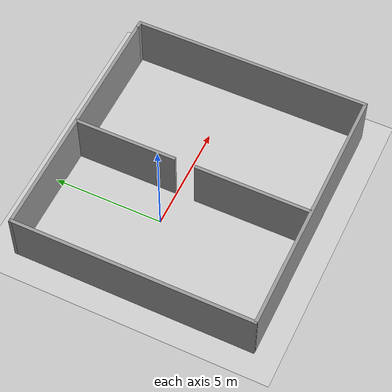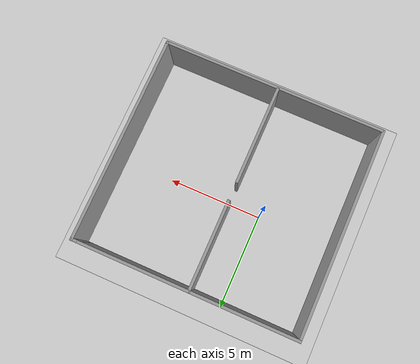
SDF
<sdf version="1.6">
 <world name="default">
  <light name="sun" type="directional">
   <pose>0 0 10 0 -0 0</pose>
   <diffuse>0.8 0.8 0.8 1</diffuse>
   <specular>0.1 0.1 0.1 1</specular>
   <attenuation>
    <range>1000</range>
    <constant>0.9</constant>
    <linear>0.01</linear>
    <quadratic>0.001</quadratic>
   </attenuation>
   <direction>-0.5 0.5 -1</direction>
  </light>
  <model name="ground_plane">
   <static>1</static>
   <link name="link">
    <collision name="collision">
     <geometry><plane><normal>0 0 1</normal><size>100 100</size></plane></geometry>
     <surface><friction><ode><mu>100</mu><mu2>50</mu2></ode></friction></surface>
    </collision>
    <visual name="visual">
     <cast_shadows>0</cast_shadows>
     <geometry><plane><normal>0 0 1</normal><size>100 100</size></plane></geometry>
     <material>
      <script><uri>file://media/materials/scripts/gazebo.material</uri><name>Gazebo/Grey</name></script>
     </material>
    </visual>
   </link>
  </model>
  <gravity>0 0 -9.8</gravity>
  <magnetic_field>6e-06 2.3e-05 -4.2e-05</magnetic_field>
  <atmosphere type="adiabatic"/>
  <physics name="default_physics" default="0" type="ode">
   <max_step_size>0.001</max_step_size>
   <real_time_factor>1</real_time_factor>
   <real_time_update_rate>1000</real_time_update_rate>
  </physics>
  <scene><ambient>0.4 0.4 0.4 1</ambient><background>0.7 0.7 0.7 1</background><shadows>1</shadows></scene>
  <spherical_coordinates>
   <surface_model>EARTH_WGS84</surface_model>
   <latitude_deg>0</latitude_deg>
   <longitude_deg>0</longitude_deg>
   <elevation>0</elevation>
   <heading_deg>0</heading_deg>
  </spherical_coordinates>
  <model name="map_a">
   <pose>1.91465 -0.667551 0 0 -0 0</pose>
   <link name="Wall_11">
    <collision name="Wall_11_Collision">
     <geometry><box><size>11.5 0.15 2.5</size></box></geometry>
     <pose>0 0 1.25 0 -0 0</pose>
    </collision>
    <visual name="Wall_11_Visual">
     <pose>0 0 1.25 0 -0 0</pose>
     <geometry><box><size>11.5 0.15 2.5</size></box></geometry>
     <material>
      <script><uri>file://media/materials/scripts/gazebo.material</uri><name>Gazebo/Grey</name></script>
      <ambient>1 1 1 1</ambient>
     </material>
    </visual>
    <pose>-0.175 5.43271 0 0 -0 0</pose>
   </link>
   <link name="Wall_12">
    <collision name="Wall_12_Collision">
     <geometry><box><size>0.5 0.15 2.5</size></box></geometry>
     <pose>0 0 1.25 0 -0 0</pose>
    </collision>
    <visual name="Wall_12_Visual">
     <pose>0 0 1.25 0 -0 0</pose>
     <geometry><box><size>0.5 0.15 2.5</size></box></geometry>
     <material>
      <script><uri>file://media/materials/scripts/gazebo.material</uri><name>Gazebo/Grey</name></script>
      <ambient>1 1 1 1</ambient>
     </material>
    </visual>
    <pose>5.675 5.43271 0 0 -0 0</pose>
   </link>
   <link name="Wall_13">
    <collision name="Wall_13_Collision">
     <geometry><box><size>11 0.15 2.5</size></box></geometry>
     <pose>0 0 1.25 0 -0 0</pose>
    </collision>
    <visual name="Wall_13_Visual">
     <pose>0 0 1.25 0 -0 0</pose>
     <geometry><box><size>11 0.15 2.5</size></box></geometry>
     <material>
      <script><uri>file://media/materials/scripts/gazebo.material</uri><name>Gazebo/Grey</name></script>
      <ambient>1 1 1 1</ambient>
     </material>
    </visual>
    <pose>5.85 0.00771 0 0 0 -1.5708</pose>
   </link>
   <link name="Wall_15">
    <collision name="Wall_15_Collision">
     <geometry><box><size>11 0.15 2.5</size></box></geometry>
     <pose>0 0 1.25 0 -0 0</pose>
    </collision>
    <visual name="Wall_15_Visual">
     <pose>0 0 1.25 0 -0 0</pose>
     <geometry><box><size>11 0.15 2.5</size></box></geometry>
     <material>
      <script><uri>file://media/materials/scripts/gazebo.material</uri><name>Gazebo/Grey</name></script>
      <ambient>1 1 1 1</ambient>
     </material>
    </visual>
    <pose>-5.85 0.00771 0 0 0 -1.5708</pose>
   </link>
   <link name="Wall_19">
    <collision name="Wall_19_Collision">
     <geometry><box><size>4.75 0.15 2.5</size></box></geometry>
     <pose>0 0 1.25 0 -0 0</pose>
    </collision>
    <visual name="Wall_19_Visual">
     <pose>0 0 1.25 0 -0 0</pose>
     <geometry><box><size>4.75 0.15 2.5</size></box></geometry>
     <material>
      <script><uri>file://media/materials/scripts/gazebo.material</uri><name>Gazebo/Grey</name></script>
      <ambient>1 1 1 1</ambient>
     </material>
    </visual>
    <pose>-0.241123 3.10228 0 0 0 -1.5708</pose>
   </link>
   <link name="Wall_23">
    <collision name="Wall_23_Collision">
     <geometry><box><size>5.25 0.15 2.5</size></box></geometry>
     <pose>0 0 1.25 0 -0 0</pose>
    </collision>
    <visual name="Wall_23_Visual">
     <pose>0 0 1.25 0 -0 0</pose>
     <geometry><box><size>5.25 0.15 2.5</size></box></geometry>
     <material>
      <script><uri>file://media/materials/scripts/gazebo.material</uri><name>Gazebo/Grey</name></script>
      <ambient>1 1 1 1</ambient>
     </material>
    </visual>
    <pose>-0.241123 -2.79917 0 0 0 -1.5708</pose>
   </link>
   <link name="Wall_9">
    <collision name="Wall_9_Collision">
     <geometry><box><size>11.75 0.15 2.5</size></box></geometry>
     <pose>0 0 1.25 0 -0 0</pose>
    </collision>
    <visual name="Wall_9_Visual">
     <pose>0 0 1.25 0 -0 0</pose>
     <geometry><box><size>11.75 0.15 2.5</size></box></geometry>
     <material>
      <script><uri>file://media/materials/scripts/gazebo.material</uri><name>Gazebo/Grey</name></script>
      <ambient>1 1 1 1</ambient>
     </material>
    </visual>
    <pose>0.045796 -5.43271 0 0 -0 0</pose>
   </link>
   <static>1</static>
  </model>
 </world>
</sdf>
